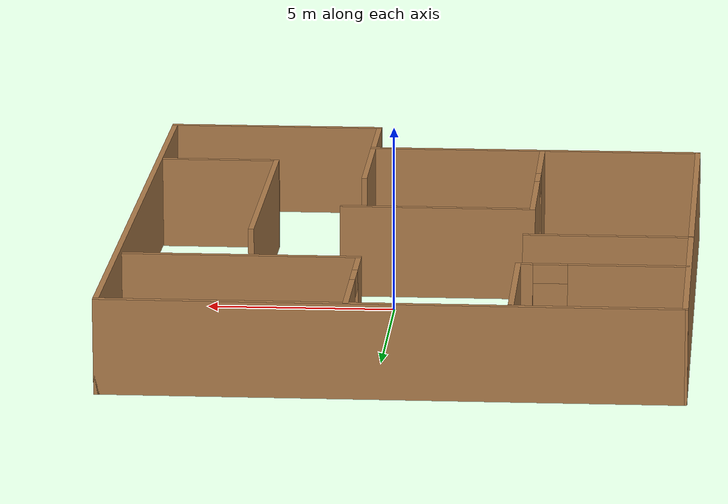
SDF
<?xml version='1.0'?>
<sdf version='1.7'>
  <model name='room1'>
    <pose>-0.495198 -0.95413 0 0 -0 0</pose>
    <link name='Wall_32'>
      <collision name='Wall_32_Collision'>
        <geometry>
          <box>
            <size>15 0.15 2.5</size>
          </box>
        </geometry>
        <pose>0 0 1.25 0 -0 0</pose>
      </collision>
      <visual name='Wall_32_Visual'>
        <pose>0 0 1.25 0 -0 0</pose>
        <geometry>
          <box>
            <size>15 0.15 2.5</size>
          </box>
        </geometry>
        <material>
          <script>
            <uri>file://media/materials/scripts/gazebo.material</uri>
            <name>Gazebo/Wood</name>
          </script>
          <ambient>1 1 1 1</ambient>
        </material>
        <meta>
          <layer>0</layer>
        </meta>
      </visual>
      <pose>0.050233 9.17477 0 0 -0 0</pose>
    </link>
    <link name='Wall_33'>
      <collision name='Wall_33_Collision'>
        <geometry>
          <box>
            <size>18.5 0.15 2.5</size>
          </box>
        </geometry>
        <pose>0 0 1.25 0 -0 0</pose>
      </collision>
      <visual name='Wall_33_Visual'>
        <pose>0 0 1.25 0 -0 0</pose>
        <geometry>
          <box>
            <size>18.5 0.15 2.5</size>
          </box>
        </geometry>
        <material>
          <script>
            <uri>file://media/materials/scripts/gazebo.material</uri>
            <name>Gazebo/Wood</name>
          </script>
          <ambient>1 1 1 1</ambient>
        </material>
        <meta>
          <layer>0</layer>
        </meta>
      </visual>
      <pose>7.47523 -0.000234 0 0 -0 -1.5708</pose>
    </link>
    <link name='Wall_34'>
      <collision name='Wall_34_Collision'>
        <geometry>
          <box>
            <size>6 0.15 2.5</size>
          </box>
        </geometry>
        <pose>0 0 1.25 0 -0 0</pose>
      </collision>
      <visual name='Wall_34_Visual'>
        <pose>0 0 1.25 0 -0 0</pose>
        <geometry>
          <box>
            <size>6 0.15 2.5</size>
          </box>
        </geometry>
        <material>
          <script>
            <uri>file://media/materials/scripts/gazebo.material</uri>
            <name>Gazebo/Wood</name>
          </script>
          <ambient>1 1 1 1</ambient>
        </material>
        <meta>
          <layer>0</layer>
        </meta>
      </visual>
      <pose>4.55023 -9.17523 0 0 -0 3.14159</pose>
    </link>
    <link name='Wall_35'>
      <collision name='Wall_35_Collision'>
        <geometry>
          <box>
            <size>2.5 0.15 2.5</size>
          </box>
        </geometry>
        <pose>0 0 1.25 0 -0 0</pose>
      </collision>
      <visual name='Wall_35_Visual'>
        <pose>0 0 1.25 0 -0 0</pose>
        <geometry>
          <box>
            <size>2.5 0.15 2.5</size>
          </box>
        </geometry>
        <material>
          <script>
            <uri>file://media/materials/scripts/gazebo.material</uri>
            <name>Gazebo/Wood</name>
          </script>
          <ambient>1 1 1 1</ambient>
        </material>
        <meta>
          <layer>0</layer>
        </meta>
      </visual>
      <pose>1.62523 -8.00023 0 0 -0 1.5708</pose>
    </link>
    <link name='Wall_36'>
      <collision name='Wall_36_Collision'>
        <geometry>
          <box>
            <size>9.25 0.15 2.5</size>
          </box>
        </geometry>
        <pose>0 0 1.25 0 -0 0</pose>
      </collision>
      <visual name='Wall_36_Visual'>
        <pose>0 0 1.25 0 -0 0</pose>
        <geometry>
          <box>
            <size>9.25 0.15 2.5</size>
          </box>
        </geometry>
        <material>
          <script>
            <uri>file://media/materials/scripts/gazebo.material</uri>
            <name>Gazebo/Wood</name>
          </script>
          <ambient>1 1 1 1</ambient>
        </material>
        <meta>
          <layer>0</layer>
        </meta>
      </visual>
      <pose>-2.92477 -6.82523 0 0 -0 3.14159</pose>
    </link>
    <link name='Wall_38'>
      <collision name='Wall_38_Collision'>
        <geometry>
          <box>
            <size>16.1503 0.15 2.5</size>
          </box>
        </geometry>
        <pose>0 0 1.25 0 -0 0</pose>
      </collision>
      <visual name='Wall_38_Visual'>
        <pose>0 0 1.25 0 -0 0</pose>
        <geometry>
          <box>
            <size>16.1503 0.15 2.5</size>
          </box>
        </geometry>
        <material>
          <script>
            <uri>file://media/materials/scripts/gazebo.material</uri>
            <name>Gazebo/Wood</name>
          </script>
          <ambient>1 1 1 1</ambient>
        </material>
        <meta>
          <layer>0</layer>
        </meta>
      </visual>
      <pose>-7.42477 1.17477 0 0 -0 -1.57705</pose>
    </link>
    <link name='Wall_40'>
      <pose>-3.12689 -3.57426 0 0 -0 1.5708</pose>
      <visual name='Wall_40_Visual_0'>
        <pose>-1.96402 0 1.25 0 -0 0</pose>
        <geometry>
          <box>
            <size>2.57196 0.15 2.5</size>
          </box>
        </geometry>
        <material>
          <script>
            <uri>file://media/materials/scripts/gazebo.material</uri>
            <name>Gazebo/Wood</name>
          </script>
          <ambient>1 1 1 1</ambient>
        </material>
        <meta>
          <layer>0</layer>
        </meta>
      </visual>
      <collision name='Wall_40_Collision_0'>
        <geometry>
          <box>
            <size>2.57196 0.15 2.5</size>
          </box>
        </geometry>
        <pose>-1.96402 0 1.25 0 -0 0</pose>
      </collision>
      <visual name='Wall_40_Visual_1'>
        <pose>1.73598 0 1.25 0 -0 0</pose>
        <geometry>
          <box>
            <size>3.02804 0.15 2.5</size>
          </box>
        </geometry>
        <material>
          <script>
            <uri>file://media/materials/scripts/gazebo.material</uri>
            <name>Gazebo/Wood</name>
          </script>
          <ambient>1 1 1 1</ambient>
        </material>
        <meta>
          <layer>0</layer>
        </meta>
      </visual>
      <collision name='Wall_40_Collision_1'>
        <geometry>
          <box>
            <size>3.02804 0.15 2.5</size>
          </box>
        </geometry>
        <pose>1.73598 0 1.25 0 -0 0</pose>
      </collision>
      <visual name='Wall_40_Visual_2'>
        <pose>-0.228041 0 2.25 0 -0 0</pose>
        <geometry>
          <box>
            <size>0.9 0.15 0.5</size>
          </box>
        </geometry>
        <material>
          <script>
            <uri>file://media/materials/scripts/gazebo.material</uri>
            <name>Gazebo/Wood</name>
          </script>
          <ambient>1 1 1 1</ambient>
        </material>
        <meta>
          <layer>0</layer>
        </meta>
      </visual>
      <collision name='Wall_40_Collision_2'>
        <geometry>
          <box>
            <size>0.9 0.15 0.5</size>
          </box>
        </geometry>
        <pose>-0.228041 0 2.25 0 -0 0</pose>
      </collision>
    </link>
    <link name='Wall_41'>
      <collision name='Wall_41_Collision'>
        <geometry>
          <box>
            <size>5.25 0.15 2.5</size>
          </box>
        </geometry>
        <pose>0 0 1.25 0 -0 0</pose>
      </collision>
      <visual name='Wall_41_Visual'>
        <pose>0 0 1.25 0 -0 0</pose>
        <geometry>
          <box>
            <size>5.25 0.15 2.5</size>
          </box>
        </geometry>
        <material>
          <script>
            <uri>file://media/materials/scripts/gazebo.material</uri>
            <name>Gazebo/Wood</name>
          </script>
          <ambient>1 1 1 1</ambient>
        </material>
        <meta>
          <layer>0</layer>
        </meta>
      </visual>
      <pose>-0.576892 -0.399259 0 0 -0 0</pose>
    </link>
    <link name='Wall_43'>
      <pose>-5.17334 5.15034 0 0 -0 0</pose>
      <visual name='Wall_43_Visual_0'>
        <pose>-0.678562 0 1.25 0 -0 0</pose>
        <geometry>
          <box>
            <size>3.14288 0.15 2.5</size>
          </box>
        </geometry>
        <material>
          <script>
            <uri>file://media/materials/scripts/gazebo.material</uri>
            <name>Gazebo/Wood</name>
          </script>
          <ambient>1 1 1 1</ambient>
        </material>
        <meta>
          <layer>0</layer>
        </meta>
      </visual>
      <collision name='Wall_43_Collision_0'>
        <geometry>
          <box>
            <size>3.14288 0.15 2.5</size>
          </box>
        </geometry>
        <pose>-0.678562 0 1.25 0 -0 0</pose>
      </collision>
      <visual name='Wall_43_Visual_1'>
        <pose>2.02144 0 1.25 0 -0 0</pose>
        <geometry>
          <box>
            <size>0.457124 0.15 2.5</size>
          </box>
        </geometry>
        <material>
          <script>
            <uri>file://media/materials/scripts/gazebo.material</uri>
            <name>Gazebo/Wood</name>
          </script>
          <ambient>1 1 1 1</ambient>
        </material>
        <meta>
          <layer>0</layer>
        </meta>
      </visual>
      <collision name='Wall_43_Collision_1'>
        <geometry>
          <box>
            <size>0.457124 0.15 2.5</size>
          </box>
        </geometry>
        <pose>2.02144 0 1.25 0 -0 0</pose>
      </collision>
      <visual name='Wall_43_Visual_2'>
        <pose>1.34288 0 2.25 0 -0 0</pose>
        <geometry>
          <box>
            <size>0.9 0.15 0.5</size>
          </box>
        </geometry>
        <material>
          <script>
            <uri>file://media/materials/scripts/gazebo.material</uri>
            <name>Gazebo/Wood</name>
          </script>
          <ambient>1 1 1 1</ambient>
        </material>
        <meta>
          <layer>0</layer>
        </meta>
      </visual>
      <collision name='Wall_43_Collision_2'>
        <geometry>
          <box>
            <size>0.9 0.15 0.5</size>
          </box>
        </geometry>
        <pose>1.34288 0 2.25 0 -0 0</pose>
      </collision>
    </link>
    <link name='Wall_44'>
      <collision name='Wall_44_Collision'>
        <geometry>
          <box>
            <size>4 0.15 2.5</size>
          </box>
        </geometry>
        <pose>0 0 1.25 0 -0 0</pose>
      </collision>
      <visual name='Wall_44_Visual'>
        <pose>0 0 1.25 0 -0 0</pose>
        <geometry>
          <box>
            <size>4 0.15 2.5</size>
          </box>
        </geometry>
        <material>
          <script>
            <uri>file://media/materials/scripts/gazebo.material</uri>
            <name>Gazebo/Wood</name>
          </script>
          <ambient>1 1 1 1</ambient>
        </material>
        <meta>
          <layer>0</layer>
        </meta>
      </visual>
      <pose>-2.99834 7.07534 0 0 -0 1.5708</pose>
    </link>
    <link name='Wall_46'>
      <collision name='Wall_46_Collision'>
        <geometry>
          <box>
            <size>4.5 0.15 2.5</size>
          </box>
        </geometry>
        <pose>0 0 1.25 0 -0 0</pose>
      </collision>
      <visual name='Wall_46_Visual'>
        <pose>0 0 1.25 0 -0 0</pose>
        <geometry>
          <box>
            <size>4.5 0.15 2.5</size>
          </box>
        </geometry>
        <material>
          <script>
            <uri>file://media/materials/scripts/gazebo.material</uri>
            <name>Gazebo/Wood</name>
          </script>
          <ambient>1 1 1 1</ambient>
        </material>
        <meta>
          <layer>0</layer>
        </meta>
      </visual>
      <pose>-5.23452 2.24427 0 0 -0 0</pose>
    </link>
    <link name='Wall_48'>
      <pose>1.15574 6.95207 0 0 -0 -1.5708</pose>
      <visual name='Wall_48_Visual_0'>
        <pose>-1.12212 0 1.25 0 -0 0</pose>
        <geometry>
          <box>
            <size>2.25576 0.15 2.5</size>
          </box>
        </geometry>
        <material>
          <script>
            <uri>file://media/materials/scripts/gazebo.material</uri>
            <name>Gazebo/Wood</name>
          </script>
          <ambient>1 1 1 1</ambient>
        </material>
        <meta>
          <layer>0</layer>
        </meta>
      </visual>
      <collision name='Wall_48_Collision_0'>
        <geometry>
          <box>
            <size>2.25576 0.15 2.5</size>
          </box>
        </geometry>
        <pose>-1.12212 0 1.25 0 -0 0</pose>
      </collision>
      <visual name='Wall_48_Visual_1'>
        <pose>1.57788 0 1.25 0 -0 0</pose>
        <geometry>
          <box>
            <size>1.34424 0.15 2.5</size>
          </box>
        </geometry>
        <material>
          <script>
            <uri>file://media/materials/scripts/gazebo.material</uri>
            <name>Gazebo/Wood</name>
          </script>
          <ambient>1 1 1 1</ambient>
        </material>
        <meta>
          <layer>0</layer>
        </meta>
      </visual>
      <collision name='Wall_48_Collision_1'>
        <geometry>
          <box>
            <size>1.34424 0.15 2.5</size>
          </box>
        </geometry>
        <pose>1.57788 0 1.25 0 -0 0</pose>
      </collision>
      <visual name='Wall_48_Visual_2'>
        <pose>0.45576 0 2.25 0 -0 0</pose>
        <geometry>
          <box>
            <size>0.9 0.15 0.5</size>
          </box>
        </geometry>
        <material>
          <script>
            <uri>file://media/materials/scripts/gazebo.material</uri>
            <name>Gazebo/Wood</name>
          </script>
          <ambient>1 1 1 1</ambient>
        </material>
        <meta>
          <layer>0</layer>
        </meta>
      </visual>
      <collision name='Wall_48_Collision_2'>
        <geometry>
          <box>
            <size>0.9 0.15 0.5</size>
          </box>
        </geometry>
        <pose>0.45576 0 2.25 0 -0 0</pose>
      </collision>
    </link>
    <link name='Wall_49'>
      <collision name='Wall_49_Collision'>
        <geometry>
          <box>
            <size>6.25 0.15 2.5</size>
          </box>
        </geometry>
        <pose>0 0 1.25 0 -0 0</pose>
      </collision>
      <visual name='Wall_49_Visual'>
        <pose>0 0 1.25 0 -0 0</pose>
        <geometry>
          <box>
            <size>6.25 0.15 2.5</size>
          </box>
        </geometry>
        <material>
          <script>
            <uri>file://media/materials/scripts/gazebo.material</uri>
            <name>Gazebo/Wood</name>
          </script>
          <ambient>1 1 1 1</ambient>
        </material>
        <meta>
          <layer>0</layer>
        </meta>
      </visual>
      <pose>4.20574 4.77707 0 0 -0 0</pose>
    </link>
    <link name='Wall_53'>
      <collision name='Wall_53_Collision'>
        <geometry>
          <box>
            <size>3.5 0.15 2.5</size>
          </box>
        </geometry>
        <pose>0 0 1.25 0 -0 0</pose>
      </collision>
      <visual name='Wall_53_Visual'>
        <pose>0 0 1.25 0 -0 0</pose>
        <geometry>
          <box>
            <size>3.5 0.15 2.5</size>
          </box>
        </geometry>
        <material>
          <script>
            <uri>file://media/materials/scripts/gazebo.material</uri>
            <name>Gazebo/Wood</name>
          </script>
          <ambient>1 1 1 1</ambient>
        </material>
        <meta>
          <layer>0</layer>
        </meta>
      </visual>
      <pose>1.62523 -5.15023 0 0 -0 1.5708</pose>
    </link>
    <link name='Wall_55'>
      <collision name='Wall_55_Collision'>
        <geometry>
          <box>
            <size>3.25 0.15 2.5</size>
          </box>
        </geometry>
        <pose>0 0 1.25 0 -0 0</pose>
      </collision>
      <visual name='Wall_55_Visual'>
        <pose>0 0 1.25 0 -0 0</pose>
        <geometry>
          <box>
            <size>3.25 0.15 2.5</size>
          </box>
        </geometry>
        <material>
          <script>
            <uri>file://media/materials/scripts/gazebo.material</uri>
            <name>Gazebo/Wood</name>
          </script>
          <ambient>1 1 1 1</ambient>
        </material>
        <meta>
          <layer>0</layer>
        </meta>
      </visual>
      <pose>5.76091 -5.24004 0 0 -0 3.14159</pose>
    </link>
    <link name='Wall_56'>
      <collision name='Wall_56_Collision'>
        <geometry>
          <box>
            <size>7.5 0.15 2.5</size>
          </box>
        </geometry>
        <pose>0 0 1.25 0 -0 0</pose>
      </collision>
      <visual name='Wall_56_Visual'>
        <pose>0 0 1.25 0 -0 0</pose>
        <geometry>
          <box>
            <size>7.5 0.15 2.5</size>
          </box>
        </geometry>
        <material>
          <script>
            <uri>file://media/materials/scripts/gazebo.material</uri>
            <name>Gazebo/Wood</name>
          </script>
          <ambient>1 1 1 1</ambient>
        </material>
        <meta>
          <layer>0</layer>
        </meta>
      </visual>
      <pose>4.21091 -1.56504 0 0 -0 1.5708</pose>
    </link>
    <static>1</static>
  </model>
</sdf>
